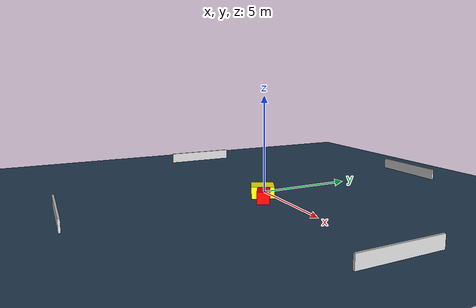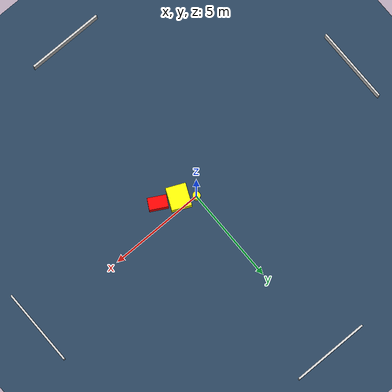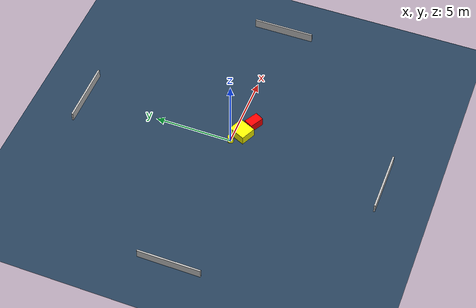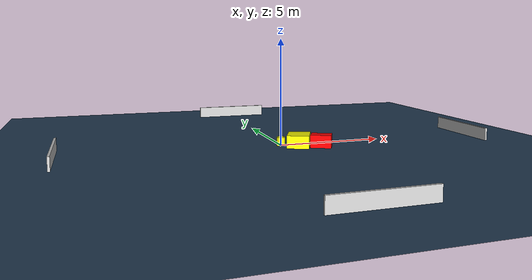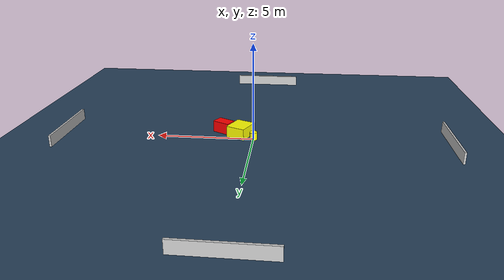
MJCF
<?xml version="1.0" ?>
<mujoco model="generated_environment">
  <option timestep="0.01" integrator="RK4" cone="elliptic"/>
  <default>
    <geom density="1"/>
  </default>
  <asset>
    <texture builtin="gradient" height="3072" name="skybox" rgb1="0.3 0.5 0.7" rgb2="0 0 0" type="skybox" width="512"/>
    <texture builtin="checker" height="300" name="groundplane" rgb1="0.2 0.3 0.4" rgb2="0.1 0.2 0.3" type="2d" width="300"/>
    <material name="groundplane" reflectance="0.2" texrepeat="5 5" texture="groundplane"/>
  </asset>
  <worldbody>
    <light dir="0 0 -1" directional="true" pos="0 0 1.5"/>
    <geom condim="3" friction="0.5 0.005 0.001" material="groundplane" name="floor" pos="0 0 0" size="0 0 0.05" type="plane"/>
    <body name="walls">
      <geom name="wall_1" condim="4" pos="-10.0 0.0 0.3" rgba="0.800000011920929 0.800000011920929 0.800000011920929 1.0" size="0.05 2.0 0.3" type="box"/>
      <geom name="wall_2" condim="4" pos="10.0 0.0 0.3" rgba="0.800000011920929 0.800000011920929 0.800000011920929 1.0" size="0.05 2.0 0.3" type="box"/>
      <geom name="wall_3" condim="4" pos="0.0 -10.0 0.3" rgba="0.800000011920929 0.800000011920929 0.800000011920929 1.0" size="2.0 0.05 0.3" type="box"/>
      <geom name="wall_4" condim="4" pos="0.0 10.0 0.3" rgba="0.800000011920929 0.800000011920929 0.800000011920929 1.0" size="2.0 0.05 0.3" type="box"/>
    </body>
    <body name="robot">
      <joint name="joint_x" type="slide" pos="0 0 0" axis="1 0 0"/>
      <joint name="joint_y" type="slide" pos="0 0 0" axis="0 1 0"/>
      <geom name="robot" type="cylinder" pos="0.0 0.0 0.2" size="0.2 0.2 0.0" mass="5.0" friction="1.0 0.005 0.0001" condim="4" rgba="1.0 1.0 0.0 1.0"/>
    </body>
    <body name="obstacle_1_movable">
      <geom name="obstacle_1_movable" condim="4" pos="0.72382842767897 -0.4857874083909501 0.3" euler="0 0 155.76845185167952" friction="0.0 0.005 0.001" rgba="1.0 1.0 0.0 1.0" size="0.5117506772326847 0.5775152420218463 0.3" type="box" mass="0.1"/>
      <joint type="free"/>
    </body>
    <body name="obstacle_2_static">
      <geom name="obstacle_2_static" condim="4" pos="1.6794267438264896 -0.9243369296674382 0.3" euler="0 0 241.35897548484547" friction="0.0 0.005 0.001" rgba="1.0 0.0 0.0 1.0" size="0.3058224076667683 0.48013182941699867 0.3" type="box"/>
    </body>
  </worldbody>
  <actuator>
    <motor name="actuator_x" joint="joint_x" gear="1" ctrlrange="-1 1"/>
    <motor name="actuator_y" joint="joint_y" gear="1" ctrlrange="-1 1"/>
  </actuator>
</mujoco>
